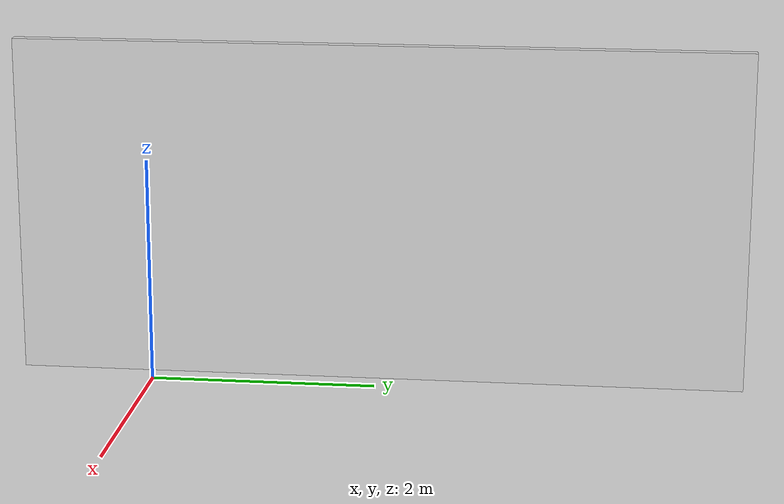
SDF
<?xml version="1.0" ?>
<!-- tmp sdf file generated from LISDF -->
<sdf version="1.9">
  <world name="tmp_world">

<model name="wall">
  <static>True</static>
  <pose>-0.27399998903274536 2.006999969482422 1.5089999437332153 0.0 -0.0 0.0</pose>
  <link name="box">

    <inertial>
      <mass>0</mass>
      <pose>0.0 0.0 0.0 0.0 -0.0 0.0</pose>
      <inertia>
        <ixx>0</ixx>
        <ixy>0</ixy>
        <ixz>0</ixz>
        <iyy>0</iyy>
        <iyz>0</iyz>
        <izz>0</izz>
      </inertia>
    </inertial>
    <collision name="box_collision">>
      <pose>0.0 0.0 0.0 0.0 -0.0 0.0</pose>
      <geometry>
        <box>
          <size>0.10000000149011612 6.474999904632568 3.0179998874664307</size>
        </box>
      </geometry>

    </collision>
    <visual name="box_visual">
      <pose>0.0 0.0 0.0 0.0 -0.0 0.0</pose>
      <geometry>
        <box>
          <size>0.10000000149011612 6.474999904632568 3.0179998874664307</size>
        </box>
      </geometry>
      <material>
        <ambient>1.0 1.0 1.0 1.0</ambient>
        <diffuse>0.8500000238418579 0.8500000238418579 0.8500000238418579 1.0</diffuse>
        <specular>0.0 0.0 0.0 1.0</specular>
        <emissive>0.0 0.0 0.0 1.0</emissive>
      </material>
      <cast_shadows>True</cast_shadows>
    </visual>
    <self_collide>True</self_collide>
  </link>

</model>

  </world>
</sdf>
